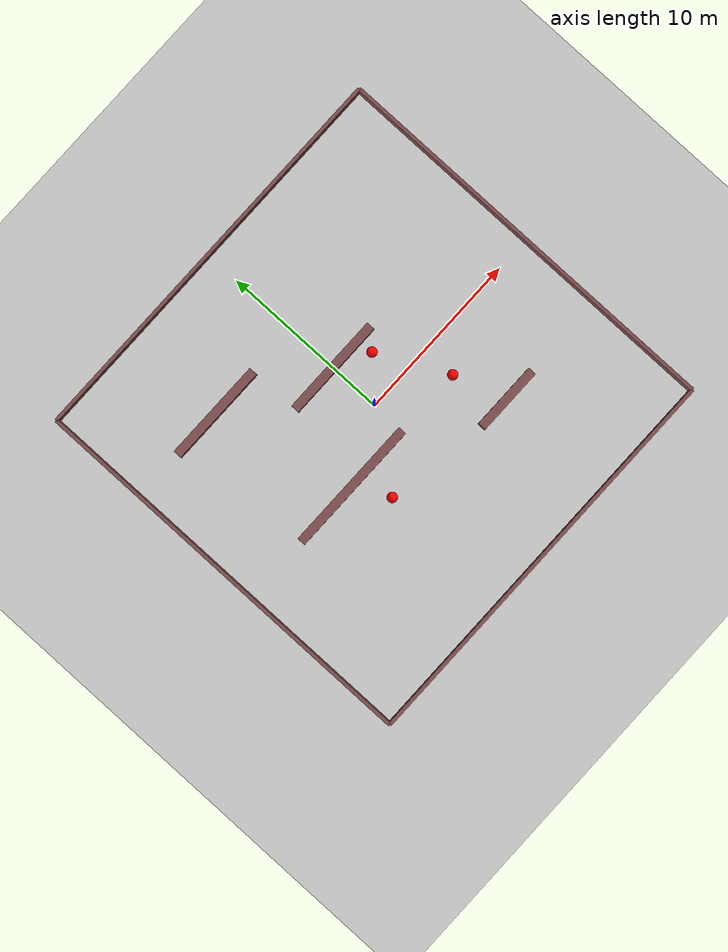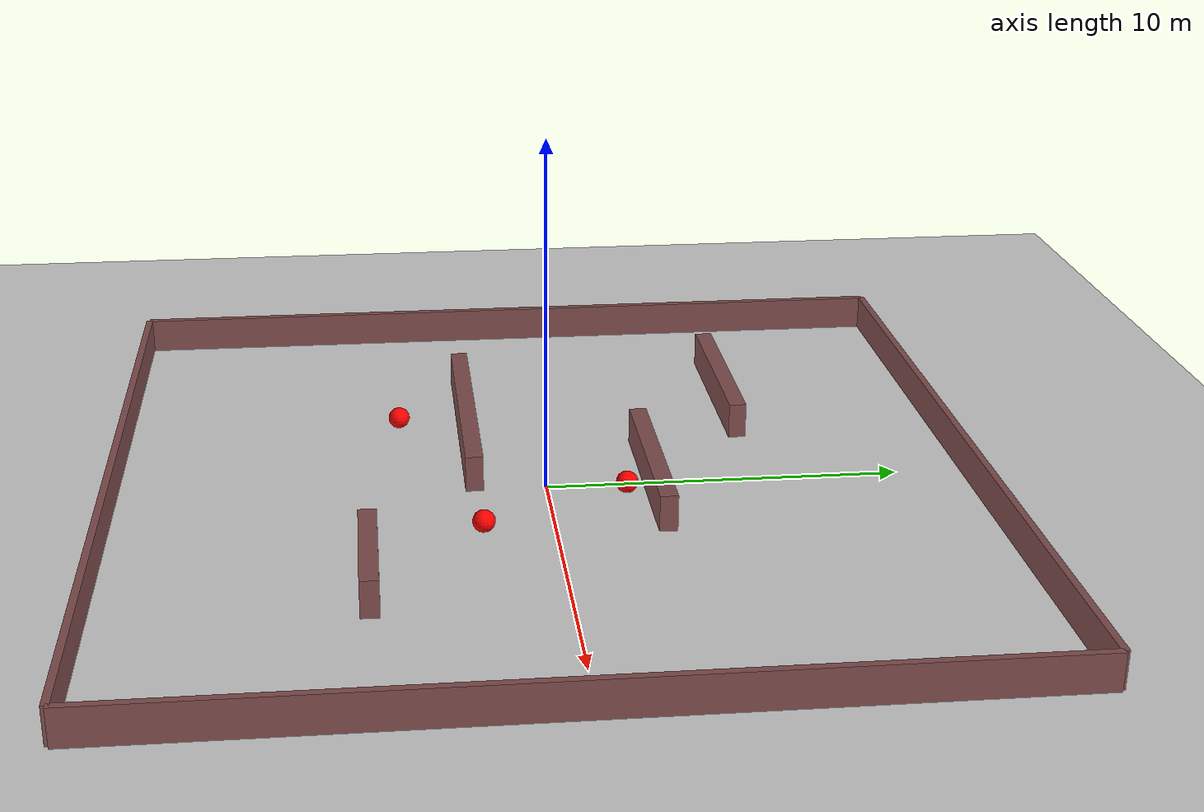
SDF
<?xml version="1.0" ?>
<sdf version="1.6">
  <world name="rescue_maze">

    <!-- Physics Configuration -->
    <physics type="ode">
      <real_time_update_rate>1000</real_time_update_rate>
      <max_step_size>0.001</max_step_size>
    </physics>

    <!-- Add Sunlight -->
    <include>
      <uri>model://sun</uri>
    </include>

    <!-- Ground Plane -->
    <include>
      <uri>model://ground_plane</uri>
    </include>

    <!-- Surrounding Walls to Contain Robots -->
    <model name="left_wall">
      <static>true</static>
      <pose>-12 0 0 0 0 0</pose>
      <link name="link">
        <collision name="collision">
          <geometry>
            <box>
              <size>0.2 24 2</size>
            </box>
          </geometry>
        </collision>
        <visual name="visual">
          <geometry>
            <box>
              <size>0.2 24 2</size>
            </box>
          </geometry>
          <material>
            <ambient>0.5 0.3 0.3 1</ambient>
          </material>
        </visual>
      </link>
    </model>

    <model name="right_wall">
      <static>true</static>
      <pose>12 0 0 0 0 0</pose>
      <link name="link">
        <collision name="collision">
          <geometry>
            <box>
              <size>0.2 24 2</size>
            </box>
          </geometry>
        </collision>
        <visual name="visual">
          <geometry>
            <box>
              <size>0.2 24 2</size>
            </box>
          </geometry>
          <material>
            <ambient>0.5 0.3 0.3 1</ambient>
          </material>
        </visual>
      </link>
    </model>

    <model name="top_wall">
      <static>true</static>
      <pose>0 12 0 0 0 0</pose>
      <link name="link">
        <collision name="collision">
          <geometry>
            <box>
              <size>24 0.2 2</size>
            </box>
          </geometry>
        </collision>
        <visual name="visual">
          <geometry>
            <box>
              <size>24 0.2 2</size>
            </box>
          </geometry>
          <material>
            <ambient>0.5 0.3 0.3 1</ambient>
          </material>
        </visual>
      </link>
    </model>

    <model name="bottom_wall">
      <static>true</static>
      <pose>0 -12 0 0 0 0</pose>
      <link name="link">
        <collision name="collision">
          <geometry>
            <box>
              <size>24 0.2 2</size>
            </box>
          </geometry>
        </collision>
        <visual name="visual">
          <geometry>
            <box>
              <size>24 0.2 2</size>
            </box>
          </geometry>
          <material>
            <ambient>0.5 0.3 0.3 1</ambient>
          </material>
        </visual>
      </link>
    </model>

    <!-- Inner Walls -->
    <model name="wall1">
      <static>true</static>
      <pose>0 3 0 0 0 0</pose>
      <link name="wall_link">
        <collision name="collision">
          <geometry>
            <box>
              <size>6 0.5 2</size>
            </box>
          </geometry>
        </collision>
        <visual name="visual">
          <geometry>
            <box>
              <size>6 0.5 2</size>
            </box>
          </geometry>
          <material>
            <ambient>0.5 0.3 0.3 1</ambient>
          </material>
        </visual>
      </link>
    </model>

    <model name="wall2">
      <static>true</static>
      <pose>-4 -2 0 0 0 1.57</pose>
      <link name="wall_link">
        <collision name="collision">
          <geometry>
            <box>
              <size>0.5 8 2</size>
            </box>
          </geometry>
        </collision>
        <visual name="visual">
          <geometry>
            <box>
              <size>0.5 8 2</size>
            </box>
          </geometry>
          <material>
            <ambient>0.5 0.3 0.3 1</ambient>
          </material>
        </visual>
      </link>
    </model>

    <!-- Additional Inner Walls -->
    <model name="wall3">
      <static>true</static>
      <pose>5 -5 0 0 0 0</pose>
      <link name="wall_link">
        <collision name="collision">
          <geometry>
            <box>
              <size>4 0.5 2</size>
            </box>
          </geometry>
        </collision>
        <visual name="visual">
          <geometry>
            <box>
              <size>4 0.5 2</size>
            </box>
          </geometry>
          <material>
            <ambient>0.5 0.3 0.3 1</ambient>
          </material>
        </visual>
      </link>
    </model>

    <model name="wall4">
      <static>true</static>
      <pose>-6 6 0 0 0 1.57</pose>
      <link name="wall_link">
        <collision name="collision">
          <geometry>
            <box>
              <size>0.5 6 2</size>
            </box>
          </geometry>
        </collision>
        <visual name="visual">
          <geometry>
            <box>
              <size>0.5 6 2</size>
            </box>
          </geometry>
          <material>
            <ambient>0.5 0.3 0.3 1</ambient>
          </material>
        </visual>
      </link>
    </model>

    <!-- Red Balls -->
    <model name="red_ball1">
      <static>false</static>
      <pose>2 2 1 0 0 0</pose>
      <link name="link">
        <collision name="collision">
          <geometry>
            <sphere>
              <radius>0.3</radius>
            </sphere>
          </geometry>
        </collision>
        <visual name="visual">
          <geometry>
            <sphere>
              <radius>0.3</radius>
            </sphere>
          </geometry>
          <material>
            <ambient>1 0 0 1</ambient>
          </material>
        </visual>
      </link>
    </model>

    <model name="red_ball2">
      <static>false</static>
      <pose>-3 -4 1 0 0 0</pose>
      <link name="link">
        <collision name="collision">
          <geometry>
            <sphere>
              <radius>0.3</radius>
            </sphere>
          </geometry>
        </collision>
        <visual name="visual">
          <geometry>
            <sphere>
              <radius>0.3</radius>
            </sphere>
          </geometry>
          <material>
            <ambient>1 0 0 1</ambient>
          </material>
        </visual>
      </link>
    </model>

    <model name="red_ball3">
      <static>false</static>
      <pose>4 -2 1 0 0 0</pose>
      <link name="link">
        <collision name="collision">
          <geometry>
            <sphere>
              <radius>0.3</radius>
            </sphere>
          </geometry>
        </collision>
        <visual name="visual">
          <geometry>
            <sphere>
              <radius>0.3</radius>
            </sphere>
          </geometry>
          <material>
            <ambient>1 0 0 1</ambient>
          </material>
        </visual>
      </link>
    </model>

  </world>
</sdf>
